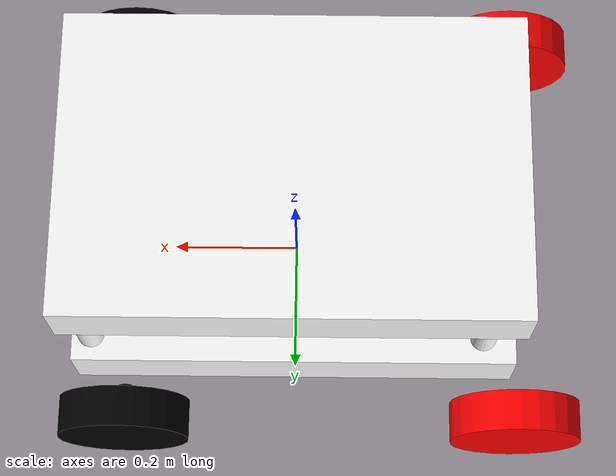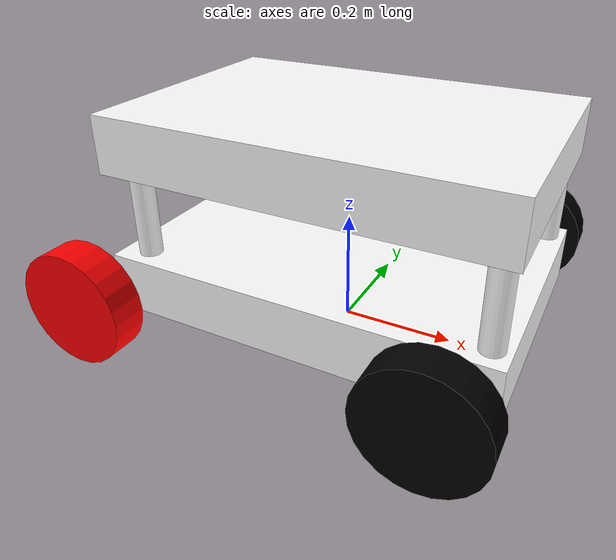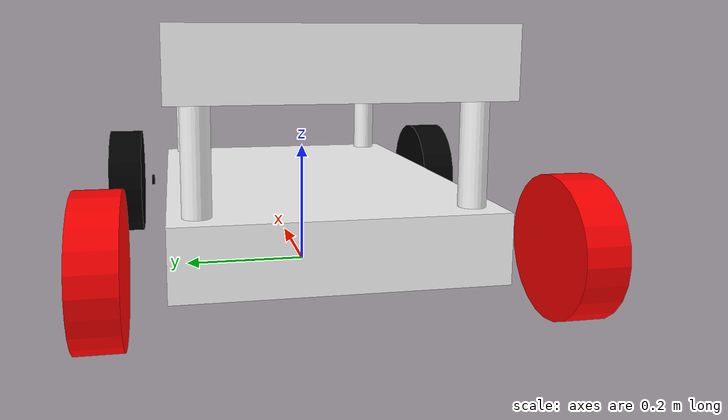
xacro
<?xml version="1.0" ?>
<robot name="wheeltec_robot" xmlns:xacro="http://www.ros.org/wiki/xacro">

    <xacro:include filename="$(find turn_on_wheeltec_robot)/urdf/xacro/wheel_tran.xacro"/>
    <!-- 左右两个轮子间距是0.28*2=0.56 -->
    <!-- 前后两个轮子距离是0.6 -->
    <!-- 定义参数 -->
    <xacro:property name="wheel_radius" value="0.10"/>
    <xacro:property name="wheel_length" value="0.06"/>
    <xacro:property name="base_size_x" value="0.68"/>
    <xacro:property name="base_size_y" value="0.46"/>
    <xacro:property name="base_size_z" value="0.10"/>
    <xacro:property name="base_mass" value="40.0"/>
    <xacro:property name="wheel_mass" value="10.0"/>
    <xacro:property name="kong" value="0.05"/> <!-- 轮子离车板间距 -->
    <xacro:property name="front_last_l" value="0.6"/>
    <xacro:property name="base_footprint_radius" value="0.001" />
    <xacro:property name="earth_space" value="0.05" /> <!-- 离地间距 -->
    <xacro:property name="base_1_mass" value="5.0"/>
    <!-- 定义底盘 -->
    <link name="base_footprint">
      <visual>
        <geometry>
          <sphere radius="${base_footprint_radius}" />
        </geometry>
      </visual>
    </link>

    <!-- 定义车底座 -->
    <link name="base_link">
        <!-- 外观 -->
        <visual>
            <origin xyz="${base_size_x/2} 0 0" rpy="0 0 0" />
            <geometry>
                <box size="${base_size_x} ${base_size_y} ${base_size_z}"/>
            </geometry>
            <material name="white">
                <color rgba="1 1 1 1"/>
            </material>
        </visual>
        <!-- 碰撞属性 -->
        <collision>
            <origin xyz="${base_size_x/2} 0 0" rpy="0 0 0" />
            <geometry>
                <box size="${base_size_x} ${base_size_y} ${base_size_z}"/>
            </geometry>
        </collision>
        <!-- 惯性属性 -->
        <inertial>
            <mass value="${base_mass}"/>
            <origin xyz="${base_size_x/2} 0 0" rpy="0 0 0"/>
            <inertia ixx="${base_mass*(base_size_z*base_size_z + base_size_x*base_size_x)/12}" ixy = "0" ixz = "0"
                     iyy="${base_mass*(base_size_y*base_size_y + base_size_x*base_size_x)/12}" iyz= "0"
                     izz="${base_mass*(base_size_y*base_size_y + base_size_z*base_size_z)/12}" />
        </inertial>
    </link>

    <joint name="base_to_foot_joint" type="fixed">
      <parent link="base_footprint" />
      <child link="base_link" />
      <origin xyz="${-1*base_size_x/2} 0 ${earth_space + base_size_z / 2 }" />
    </joint>

    <link name="left_wheel_link">
        <visual>
            <origin xyz="0 0 0" rpy="-1.5707963 0 0" />
            <geometry>
                <cylinder radius="${wheel_radius}" length="${wheel_length}"/>
            </geometry>
            <material name="Red">
                <color rgba="1 0 0 1"/>
            </material>
        </visual>
        <collision>
            <origin xyz="0 0 0" rpy="-1.5707963 0 0" />
            <geometry>
                <cylinder radius="${wheel_radius}" length="${wheel_length}"/>
            </geometry>
        </collision>
        <inertial>
            <mass value="${wheel_mass}"/>
            <origin xyz="0 0 0" rpy="-1.5707963 0 0"/>
            <inertia ixx="${wheel_mass*(3*wheel_radius*wheel_radius+wheel_length*wheel_length)/12}" ixy = "0" ixz = "0"
                iyy="${wheel_mass*(3*wheel_radius*wheel_radius+wheel_length*wheel_length)/12}" iyz = "0"
                izz="${wheel_mass*wheel_radius*wheel_radius/2}" />
        </inertial>
    </link>

    <!-- 左后轮驱动 -->
    <joint name="left_wheel_link_joint" type="continuous">
        <origin xyz="0 ${base_size_y/2 + wheel_length/2 + kong} 0" rpy="0 0 0"/>
        <parent link="base_link"/>
        <child link="left_wheel_link"/>
        <axis xyz="0 1 0"/>
    </joint>

    <xacro:wheel_transmission name="left_wheel_link" />

    <link name="right_wheel_link">
        <visual>
            <origin xyz="0 0 0" rpy="1.5707963 0 0" />
            <geometry>
                <cylinder radius="${wheel_radius}" length="${wheel_length}"/>
            </geometry>
            <material name="Red">
                <color rgba="1 0 0 1"/>
            </material>
        </visual>
        <collision>
            <origin xyz="0 0 0" rpy="1.5707963 0 0" />
            <geometry>
                <cylinder radius="${wheel_radius}" length="${wheel_length}"/>
            </geometry>
        </collision>
        <inertial>
            <mass value="${wheel_mass}"/>
            <origin xyz="0 0 0" rpy="1.5707963 0 0" />
            <inertia ixx="${wheel_mass*(3*wheel_radius*wheel_radius+wheel_length*wheel_length)/12}" ixy = "0" ixz = "0"
                iyy="${wheel_mass*(3*wheel_radius*wheel_radius+wheel_length*wheel_length)/12}" iyz = "0"
                izz="${wheel_mass*wheel_radius*wheel_radius/2}" />
        </inertial>
    </link>

    <!-- 右后轮驱动 -->
    <joint name="right_wheel_link_joint" type="continuous">
        <origin xyz="0 ${-1*(base_size_y/2 + wheel_length/2 + kong)} 0" rpy="0 0 0"/>
        <parent link="base_link"/>
        <child link="right_wheel_link"/>
        <axis xyz="0 1 0"/>
    </joint>

    <xacro:wheel_transmission name="right_wheel_link" />

    <xacro:property name="steering_mass" value="0.5" />
    <xacro:property name="steer_radius" value="0.01" />
    <xacro:property name="steer_length" value="0.005" />
    <!-- 左前轮驱动 -->
    <link name="left_front_link">
        <visual>
            <origin xyz="0 0 0" rpy="-1.5707963 0 0" />
            <geometry>
                <cylinder radius="${wheel_radius}" length="${wheel_length}"/>
            </geometry>
            <material name="black">
                <color rgba="0 0 0 1"/>
            </material>
        </visual>
        <collision>
            <origin xyz="0 0 0" rpy="-1.5707963 0 0" />
            <geometry>
                <cylinder radius="${wheel_radius}" length="${wheel_length}"/>
            </geometry>
        </collision>
        <inertial>
            <mass value="${wheel_mass}"/>
            <origin xyz="0 0 0" rpy="-1.5707963 0 0"/>
            <inertia ixx="${wheel_mass*(3*wheel_radius*wheel_radius+wheel_length*wheel_length)/12}" ixy = "0" ixz = "0"
                iyy="${wheel_mass*(3*wheel_radius*wheel_radius+wheel_length*wheel_length)/12}" iyz = "0"
                izz="${wheel_mass*wheel_radius*wheel_radius/2}" />
        </inertial>
    </link>

    <!-- 前轮转向轴 (前轮的父关节)-->
    <link name="front_steer_left_link">
        <visual>
            <geometry>
                <cylinder radius="${steer_radius}" length="${steer_length}" />
            </geometry>
            <origin xyz="0 0 0" rpy="-1.5707963 0 0" />
            <material name="black">
                <color rgba="0.0 0.0 0.0 1.0" />
            </material>
        </visual>
        <collision>
            <geometry>
                <cylinder radius="${steer_radius}" length="${steer_length}" />
            </geometry>
            <origin xyz="0.0 0.0 0.0" rpy="-1.5707963 0.0 0.0" />
        </collision>
        <inertial>
            <origin xyz="0 0 0" />
            <mass value="${steering_mass}" />
            <inertia ixx="${steering_mass*(3*steer_radius*steer_radius+steer_length*steer_length)/12}" ixy = "0" ixz = "0"
                iyy="${steering_mass*(3*steer_radius*steer_radius+steer_length*steer_length)/12}" iyz = "0"
                izz="${steering_mass*steer_radius*steer_radius/2}" />
        </inertial>
    </link>

    <joint name="left_front_link_joint" type="continuous">
        <parent link="front_steer_left_link"/>
        <child link="left_front_link"/>
        <origin rpy="0 0 0" xyz="0 ${kong} 0"/>
        <axis xyz="0 1 0"/>
         <limit effort="10" velocity="1000" />
    </joint>

    <joint name="front_steer_left_link_joint" type="revolute">
      <parent link="base_link"/>
      <child link="front_steer_left_link"/>
      <origin rpy="0 0 0" xyz="${front_last_l} ${base_size_y/2 + wheel_length/2 } 0"/>
      <axis xyz="0 0 1"/>
      <limit lower="-0.6" upper="0.6" effort="5.0" velocity="1000.0"/>
    </joint>

    <xacro:steering_hinge_transmission name="front_steer_left_link" />
    <xacro:wheel_transmission name="left_front_link" />

    <link name="right_front_link">
        <visual>
            <origin xyz="0 0 0" rpy="1.5707963 0 0" />
            <geometry>
                <cylinder radius="${wheel_radius}" length="${wheel_length}"/>
            </geometry>
            <material name="black">
                <color rgba="0 0 0 1"/>
            </material>
        </visual>
        <collision>
            <origin xyz="0 0 0" rpy="1.5707963 0 0" />
            <geometry>
                <cylinder radius="${wheel_radius}" length="${wheel_length}"/>
            </geometry>
        </collision>
        <inertial>
            <mass value="${wheel_mass}"/>
            <origin xyz="0 0 0" rpy="1.5707963 0 0 "/>
            <inertia ixx="${wheel_mass*(3*wheel_radius*wheel_radius+wheel_length*wheel_length)/12}" ixy = "0" ixz = "0"
                iyy="${wheel_mass*(3*wheel_radius*wheel_radius+wheel_length*wheel_length)/12}" iyz = "0"
                izz="${wheel_mass*wheel_radius*wheel_radius/2}" />
        </inertial>
    </link>

    <!-- 前轮转向轴 (前轮的父关节)-->
    <link name="front_steer_right_link">
        <visual>
            <geometry>
                <cylinder radius="${steer_radius}" length="${steer_length}" />
            </geometry>
            <origin xyz="0 0 0" rpy="1.5707963 0 0" />
            <material name="black">
                <color rgba="0.0 0.0 0.0 1.0" />
            </material>
        </visual>
        <collision>
            <geometry>
                <cylinder radius="${steer_radius}" length="${steer_length}" />
            </geometry>
            <origin xyz="0.0 0.0 0.0" rpy="1.5707963 0.0 0.0" />
        </collision>
        <inertial>
            <origin xyz="0 0 0" />
            <mass value="${steering_mass}" />
            <inertia ixx="${steering_mass*(3*steer_radius*steer_radius+steer_length*steer_length)/12}" ixy = "0" ixz = "0"
                iyy="${steering_mass*(3*steer_radius*steer_radius+steer_length*steer_length)/12}" iyz = "0"
                izz="${steering_mass*steer_radius*steer_radius/2}" />
        </inertial>
    </link>

    <joint name="right_front_link_joint" type="continuous">
        <parent link="front_steer_right_link"/>
        <child link="right_front_link"/>
        <origin rpy="0 0 0" xyz="0 ${-kong} 0"/>
        <axis xyz="0 1 0"/>
        <limit effort="10" velocity="1000" />
    </joint>

    <joint name="front_steer_right_link_joint" type="revolute">
      <parent link="base_link"/>
      <child link="front_steer_right_link"/>
      <origin rpy="0 0 0" xyz="${front_last_l} ${-1 *(base_size_y/2 + wheel_length/2 )}  0"/>
      <axis xyz="0 0 1"/>
      <limit lower="-0.6" upper="0.6" effort="5.0" velocity="1000.0"/>
    </joint>

    <xacro:steering_hinge_transmission name="front_steer_right_link" />
    <xacro:wheel_transmission name="right_front_link" />

    <xacro:include filename="$(find turn_on_wheeltec_robot)/urdf/xacro/control.xacro"/>

    <xacro:property name="column_radius" value="0.02"/>
    <xacro:property name="column_length" value="0.20"/>
    <xacro:property name="column_mass" value="1.0"/>
    <xacro:property name="column_j" value="0.05"/>
    <xacro:property name="column_y" value="0.65"/>

    <link name="column_one">
        <visual>
            <geometry>
                <cylinder radius="${column_radius}" length="${column_length}" />
            </geometry>
            <origin xyz="0 0 0" rpy="0 0 0" />
            <material name="white">
                <color rgba="1.0 1.0 1.0 1.0" />
            </material>
        </visual>
        <collision>
            <geometry>
                <cylinder radius="${column_radius}" length="${column_length}" />
            </geometry>
            <origin xyz="0.0 0.0 0.0" rpy="0 0.0 0.0" />
        </collision>
        <inertial>
            <origin xyz="0 0 0" />
            <mass value="${column_mass}" />
            <inertia ixx="${column_mass*(3*column_radius*column_radius+column_length*column_length)/12}" ixy = "0" ixz = "0"
                iyy="${column_mass*(3*column_radius*column_radius+column_length*column_length)/12}" iyz = "0"
                izz="${column_mass*column_radius*column_radius/2}" />
        </inertial>
    </link>

    <joint name="column_one_joint" type="fixed">
      <parent link="base_link"/>
      <child link="column_one"/>
      <origin rpy="0 0 0" xyz="${column_j} ${base_size_y/2 + column_radius/2 - kong} ${column_length / 2 + base_size_z / 2} "/>
    </joint>

    <link name="column_two">
        <visual>
            <geometry>
                <cylinder radius="${column_radius}" length="${column_length}" />
            </geometry>
            <origin xyz="0 0 0" rpy="0 0 0" />
            <material name="white">
                <color rgba="1.0 1.0 1.0 1.0" />
            </material>
        </visual>
        <collision>
            <geometry>
                <cylinder radius="${column_radius}" length="${column_length}" />
            </geometry>
            <origin xyz="0.0 0.0 0.0" rpy="0 0.0 0.0" />
        </collision>
        <inertial>
            <origin xyz="0 0 0" />
            <mass value="${column_mass}" />
            <inertia ixx="${column_mass*(3*column_radius*column_radius+column_length*column_length)/12}" ixy = "0" ixz = "0"
                iyy="${column_mass*(3*column_radius*column_radius+column_length*column_length)/12}" iyz = "0"
                izz="${column_mass*column_radius*column_radius/2}" />
        </inertial>
    </link>

    <joint name="column_two_joint" type="fixed">
      <parent link="base_link"/>
      <child link="column_two"/>
      <origin rpy="0 0 0" xyz="${column_j} ${-1 *(base_size_y/2 + column_radius/2 - kong)} ${column_length / 2 + base_size_z / 2} "/>
    </joint>

    <link name="column_three">
        <visual>
            <geometry>
                <cylinder radius="${column_radius}" length="${column_length}" />
            </geometry>
            <origin xyz="0 0 0" rpy="0 0 0" />
            <material name="white">
                <color rgba="1.0 1.0 1.0 1.0" />
            </material>
        </visual>
        <collision>
            <geometry>
                <cylinder radius="${column_radius}" length="${column_length}" />
            </geometry>
            <origin xyz="0.0 0.0 0.0" rpy="0 0.0 0.0" />
        </collision>
        <inertial>
            <origin xyz="0 0 0" />
            <mass value="${column_mass}" />
            <inertia ixx="${column_mass*(3*column_radius*column_radius+column_length*column_length)/12}" ixy = "0" ixz = "0"
                iyy="${column_mass*(3*column_radius*column_radius+column_length*column_length)/12}" iyz = "0"
                izz="${column_mass*column_radius*column_radius/2}" />
        </inertial>
    </link>

    <joint name="column_three_joint" type="fixed">
      <parent link="base_link"/>
      <child link="column_three"/>
      <origin rpy="0 0 0" xyz="${column_y} ${-1 *(base_size_y/2 + column_radius/2 - kong)} ${column_length / 2 + base_size_z / 2} "/>
    </joint>

    <link name="column_four">
        <visual>
            <geometry>
                <cylinder radius="${column_radius}" length="${column_length}" />
            </geometry>
            <origin xyz="0 0 0" rpy="0 0 0" />
            <material name="white">
                <color rgba="1.0 1.0 1.0 1.0" />
            </material>
        </visual>
        <collision>
            <geometry>
                <cylinder radius="${column_radius}" length="${column_length}" />
            </geometry>
            <origin xyz="0.0 0.0 0.0" rpy="0 0.0 0.0" />
        </collision>
        <inertial>
            <origin xyz="0 0 0" />
            <mass value="${column_mass}" />
            <inertia ixx="${column_mass*(3*column_radius*column_radius+column_length*column_length)/12}" ixy = "0" ixz = "0"
                iyy="${column_mass*(3*column_radius*column_radius+column_length*column_length)/12}" iyz = "0"
                izz="${column_mass*column_radius*column_radius/2}" />
        </inertial>
    </link>

    <joint name="column_four_joint" type="fixed">
      <parent link="base_link"/>
      <child link="column_four"/>
      <origin rpy="0 0 0" xyz="${column_y} ${base_size_y/2 + column_radius/2 - kong} ${column_length / 2 + base_size_z / 2} "/>
    </joint>

        <!-- 定义车二层 -->
    <link name="two_ply_link">
        <!-- 外观 -->
        <visual>
            <origin xyz="0 0 0" rpy="0 0 0" />
            <geometry>
                <box size="${base_size_x} ${base_size_y} ${base_size_z}"/>
            </geometry>
            <material name="white">
                <color rgba="1 1 1 1"/>
            </material>
        </visual>
        <!-- 碰撞属性 -->
        <collision>
            <origin xyz="0 0 0" rpy="0 0 0" />
            <geometry>
                <box size="${base_size_x} ${base_size_y} ${base_size_z}"/>
            </geometry>
        </collision>
        <!-- 惯性属性 -->
        <inertial>
            <mass value="${base_1_mass}"/>
            <origin xyz="${base_size_x/2} 0 0" rpy="0 0 0"/>
            <inertia ixx="${base_1_mass*(base_size_z*base_size_z + base_size_x*base_size_x)/12}" ixy = "0" ixz = "0"
                     iyy="${base_1_mass*(base_size_y*base_size_y + base_size_x*base_size_x)/12}" iyz= "0"
                     izz="${base_1_mass*(base_size_y*base_size_y + base_size_z*base_size_z)/12}" />
        </inertial>
    </link>

    <joint name="two_ply_joint" type="fixed">
      <parent link="base_link"/>
      <child link="two_ply_link"/>
      <origin rpy="0 0 0" xyz="${ base_size_x / 2 } 0 ${ column_length  + base_size_z / 2} "/>
    </joint>

</robot>
